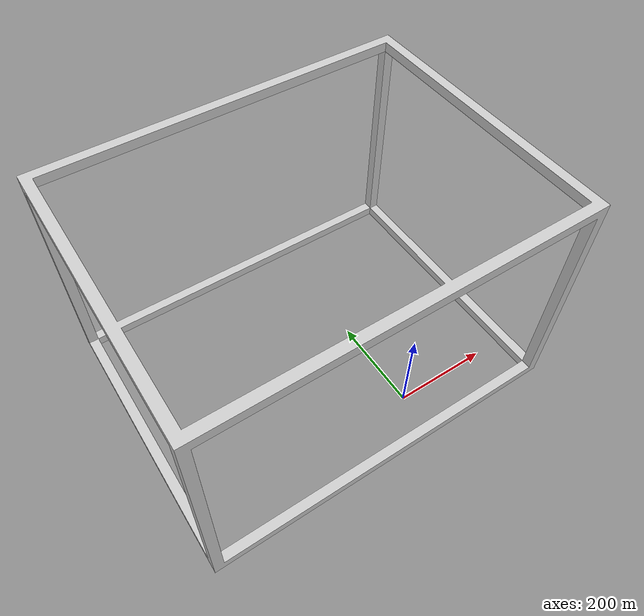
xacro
<?xml version="1.0"?>

<robot xmlns:xacro="http://ros.org/wiki/xacro"
       name="sauce_v1" >

    <xacro:include filename="$(find vrep_creative_description)/urdf/materials.urdf.xacro"/>

    <!-- Frame -->
    <link name="frame">
        <visual>
            <origin xyz="0 0 0" rpy="0 0 0" />
            <geometry>
                <mesh filename="package://vrep_creative_description/meshes/frame.obj" />
            </geometry>
            <material name="material_light_grey"/>
        </visual>
        <collision>
        <origin xyz="0 0 0" rpy="0 0 0" />
            <geometry>
                <mesh filename="package://vrep_creative_description/meshes/frame.obj" />
            </geometry>
        </collision>
    </link>
</robot>
